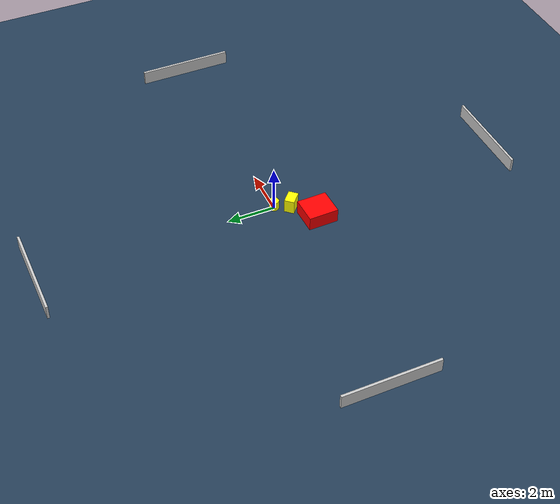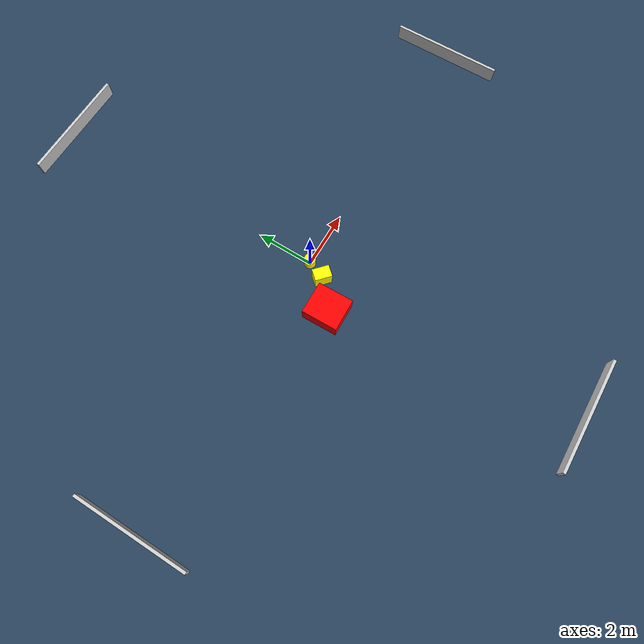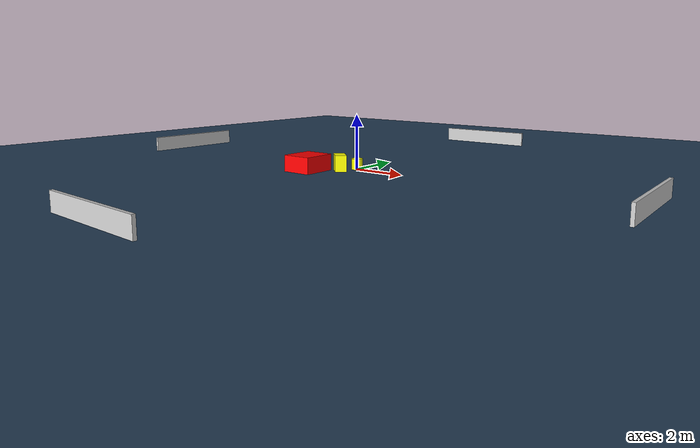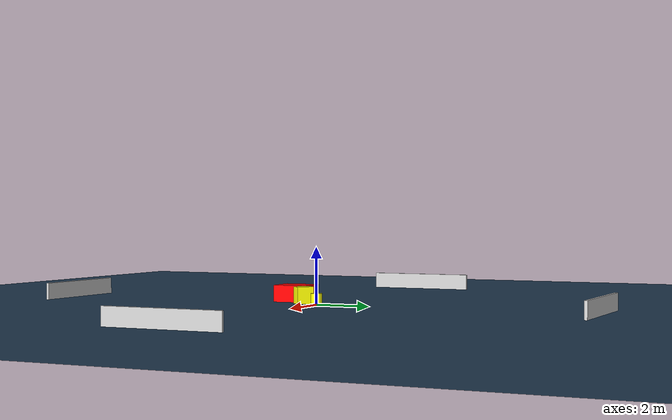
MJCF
<?xml version="1.0" ?>
<mujoco model="generated_environment">
  <option timestep="0.01" integrator="RK4" cone="elliptic"/>
  <default>
    <geom density="1"/>
  </default>
  <asset>
    <texture builtin="gradient" height="3072" name="skybox" rgb1="0.3 0.5 0.7" rgb2="0 0 0" type="skybox" width="512"/>
    <texture builtin="checker" height="300" name="groundplane" rgb1="0.2 0.3 0.4" rgb2="0.1 0.2 0.3" type="2d" width="300"/>
    <material name="groundplane" reflectance="0.2" texrepeat="5 5" texture="groundplane"/>
  </asset>
  <worldbody>
    <light dir="0 0 -1" directional="true" pos="0 0 1.5"/>
    <geom condim="3" friction="0.5 0.005 0.001" material="groundplane" name="floor" pos="0 0 0" size="0 0 0.05" type="plane"/>
    <body name="walls">
      <geom name="wall_1" condim="4" pos="-10.0 0.0 0.3" rgba="0.800000011920929 0.800000011920929 0.800000011920929 1.0" size="0.05 2.0 0.3" type="box"/>
      <geom name="wall_2" condim="4" pos="10.0 0.0 0.3" rgba="0.800000011920929 0.800000011920929 0.800000011920929 1.0" size="0.05 2.0 0.3" type="box"/>
      <geom name="wall_3" condim="4" pos="0.0 -10.0 0.3" rgba="0.800000011920929 0.800000011920929 0.800000011920929 1.0" size="2.0 0.05 0.3" type="box"/>
      <geom name="wall_4" condim="4" pos="0.0 10.0 0.3" rgba="0.800000011920929 0.800000011920929 0.800000011920929 1.0" size="2.0 0.05 0.3" type="box"/>
    </body>
    <body name="robot">
      <joint name="joint_x" type="slide" pos="0 0 0" axis="1 0 0"/>
      <joint name="joint_y" type="slide" pos="0 0 0" axis="0 1 0"/>
      <geom name="robot" type="cylinder" pos="0.0 0.0 0.2" size="0.2 0.2 0.0" mass="5.0" friction="1.0 0.005 0.0001" condim="4" rgba="1.0 1.0 0.0 1.0"/>
    </body>
    <body name="obstacle_1_movable">
      <geom name="obstacle_1_movable" condim="4" pos="-0.28514039588704243 -0.6369615967341421 0.3" euler="0 0 137.77795439826957" friction="0.0 0.005 0.001" rgba="1.0 1.0 0.0 1.0" size="0.29328955435279 0.2053640090958142 0.3" type="box" mass="0.1"/>
      <joint type="free"/>
    </body>
    <body name="obstacle_2_static">
      <geom name="obstacle_2_static" condim="4" pos="-1.1797340774576932 -1.3786238171814125 0.3" euler="0 0 1.2627525801981543" friction="0.0 0.005 0.001" rgba="1.0 0.0 0.0 1.0" size="0.5649513230485876 0.6257596157477081 0.3" type="box"/>
    </body>
  </worldbody>
  <actuator>
    <motor name="actuator_x" joint="joint_x" gear="1" ctrlrange="-1 1"/>
    <motor name="actuator_y" joint="joint_y" gear="1" ctrlrange="-1 1"/>
  </actuator>
</mujoco>
